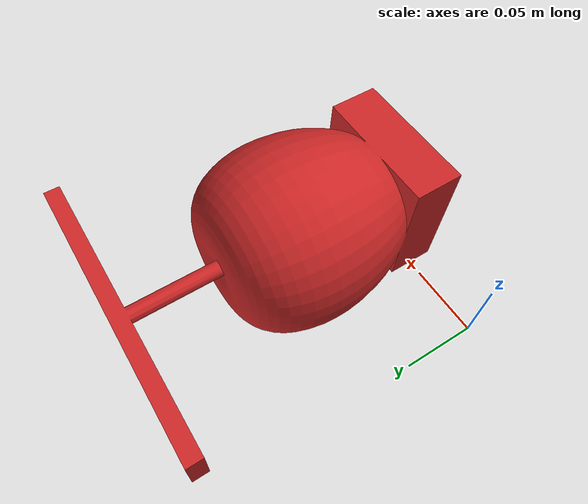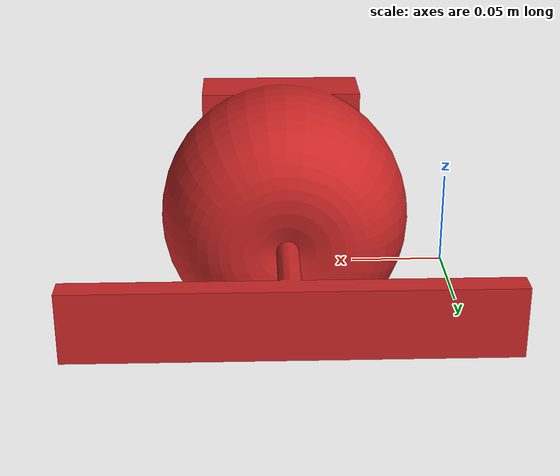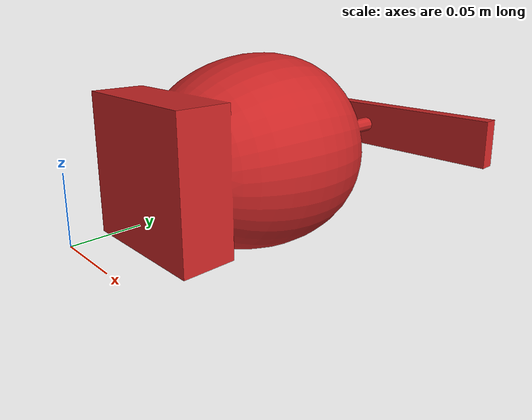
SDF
<?xml version="1.0" ?>
<sdf version="1.5">
  <model name="berry_design_new">
    <static>false</static>
    <link name="link">

	<inertial>
                <pose>0 0 0 0 0 0</pose>
                <inertia>
                    <ixx>0.002586</ixx>
                    <ixy>0</ixy>
                    <ixz>0</ixz>
                    <iyy>0.0027975</iyy>
                    <iyz>0</iyz>
                    <izz>0.0015441</izz>
                </inertia>
                <mass>1.004</mass>
            </inertial>

	<collision name="collision">
        <geometry>
          <mesh>
            <uri>model://berry_design_new/meshes/berry_design_new.STL</uri>
            <scale>0.001 0.001 0.001</scale>
          </mesh>
        </geometry>
        <surface>
          <friction>
            <ode>
              <mu>50</mu>
              <mu2>100</mu2>
            </ode>
          </friction>
        </surface>
      </collision>
      <visual name="visual">
        <cast_shadows>false</cast_shadows>
        <geometry>
          <mesh>
            <uri>model://berry_design_new/meshes/berry_design_new.STL</uri>
            <scale>0.001 0.001 0.001</scale>
          </mesh>
        </geometry>
        <material>
          <script>
            <uri>file://media/materials/scripts/gazebo.material</uri>
            <name>Gazebo/Red</name>
          </script>
        </material>
      </visual>
    </link>
  </model>
</sdf>
